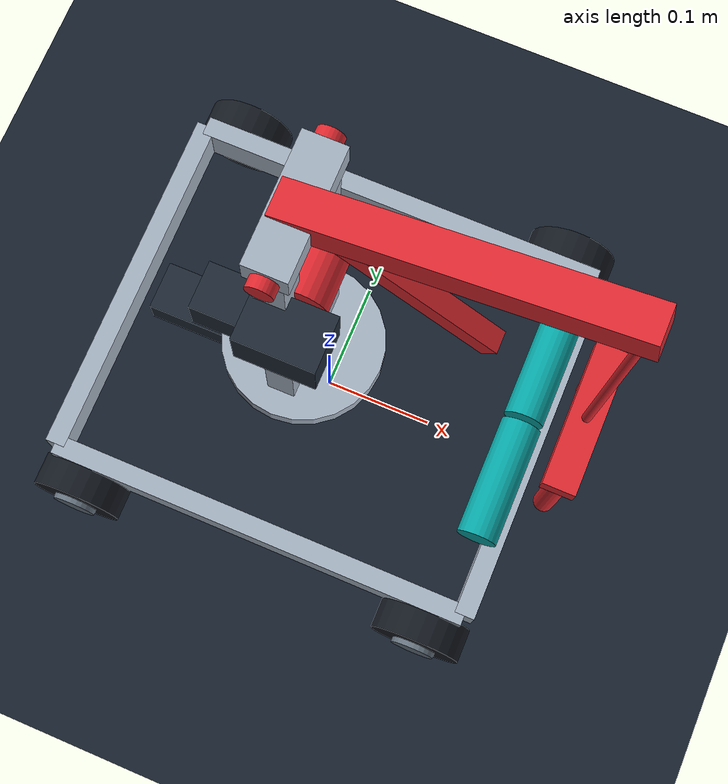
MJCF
<mujoco model="Turntable Crane Collar"><compiler angle="degree" /><visual><global offwidth="800" offheight="600" /><quality offsamples="0" /><headlight ambient=".45 .45 .45" /></visual><worldbody><light pos="0 -1 3" castshadow="false" /><geom type="plane" size="2 2 .1" rgba=".09 .13 .18 1" /><geom type="box" pos="0 -0.165 0.066275" size="0.195 0.009 0.018" euler="0 0 0" rgba=".65 .7 .76 1" contype="0" conaffinity="0" /><geom type="box" pos="0 0.165 0.066275" size="0.195 0.009 0.018" euler="0 0 0" rgba=".65 .7 .76 1" contype="0" conaffinity="0" /><geom type="box" pos="-0.195 0 0.066275" size="0.009 0.165 0.018" euler="0 0 0" rgba=".65 .7 .76 1" contype="0" conaffinity="0" /><geom type="box" pos="0.195 0 0.066275" size="0.009 0.165 0.018" euler="0 0 0" rgba=".65 .7 .76 1" contype="0" conaffinity="0" /><geom type="cylinder" pos="-0.165 -0.186 0.041275" size="0.041275 0.015" euler="90 0 0" rgba=".08 .1 .13 1" contype="0" conaffinity="0" /><geom type="cylinder" pos="-0.165 -0.203 0.041275" size="0.019812 0.003" euler="90 0 0" rgba=".4 .45 .5 1" contype="0" conaffinity="0" /><geom type="cylinder" pos="0.165 -0.186 0.041275" size="0.041275 0.015" euler="90 0 0" rgba=".08 .1 .13 1" contype="0" conaffinity="0" /><geom type="cylinder" pos="0.165 -0.203 0.041275" size="0.019812 0.003" euler="90 0 0" rgba=".4 .45 .5 1" contype="0" conaffinity="0" /><geom type="cylinder" pos="-0.165 0.186 0.041275" size="0.041275 0.015" euler="90 0 0" rgba=".08 .1 .13 1" contype="0" conaffinity="0" /><geom type="cylinder" pos="-0.165 0.203 0.041275" size="0.019812 0.003" euler="90 0 0" rgba=".4 .45 .5 1" contype="0" conaffinity="0" /><geom type="cylinder" pos="0.165 0.186 0.041275" size="0.041275 0.015" euler="90 0 0" rgba=".08 .1 .13 1" contype="0" conaffinity="0" /><geom type="cylinder" pos="0.165 0.203 0.041275" size="0.019812 0.003" euler="90 0 0" rgba=".4 .45 .5 1" contype="0" conaffinity="0" /><geom type="box" pos="-0.095 0.0 0.091275" size="0.07 0.022 0.015" euler="0 0 0" rgba=".12 .16 .21 1" contype="0" conaffinity="0" /><geom type="cylinder" pos="-0.025 0.0 0.108" size="0.0725 0.009" euler="0.0 0.0 0.0" rgba=".65 .7 .76 1" contype="0" conaffinity="0" /><geom type="box" pos="-0.025 -0.038 0.275" size="0.0125 0.0125 0.165" euler="0.0 0.0 0.0" rgba=".65 .7 .76 1" contype="0" conaffinity="0" /><geom type="box" pos="-0.025 0.038 0.275" size="0.0125 0.0125 0.165" euler="0.0 0.0 0.0" rgba=".65 .7 .76 1" contype="0" conaffinity="0" /><geom type="box" pos="-0.025 0.0 0.432" size="0.0175 0.0525 0.0125" euler="0.0 0.0 0.0" rgba=".65 .7 .76 1" contype="0" conaffinity="0" /><geom type="box" pos="0.095 0.0 0.455" size="0.135 0.015 0.015" euler="0.0 -10.0 0.0" rgba=".87 .16 .19 1" contype="0" conaffinity="0" /><geom type="box" pos="0.055 0.0 0.38" size="0.095 0.009 0.009" euler="0.0 38.0 0.0" rgba=".87 .16 .19 1" contype="0" conaffinity="0" /><geom type="cylinder" pos="-0.025 0.0 0.43" size="0.011 0.0625" euler="90.0 0.0 0.0" rgba=".87 .16 .19 1" contype="0" conaffinity="0" /><geom type="box" pos="-0.092 0.0 0.137" size="0.03 0.0225 0.0225" euler="0.0 0.0 0.0" rgba=".12 .16 .21 1" contype="0" conaffinity="0" /><geom type="box" pos="-0.008 -0.062 0.35" size="0.0325 0.0225 0.0225" euler="0.0 0.0 0.0" rgba=".12 .16 .21 1" contype="0" conaffinity="0" /><geom type="cylinder" pos="-0.008 0.0 0.35" size="0.021 0.035" euler="90.0 0.0 0.0" rgba=".87 .16 .19 1" contype="0" conaffinity="0" /><geom type="cylinder" pos="0.22 0.0 0.333" size="0.004 0.115" euler="0.0 0.0 0.0" rgba=".87 .16 .19 1" contype="0" conaffinity="0" /><geom type="box" pos="0.22 0.0 0.218" size="0.014 0.0625 0.009" euler="0.0 0.0 0.0" rgba=".87 .16 .19 1" contype="0" conaffinity="0" /><geom type="capsule" pos="0.22 0.052 0.165" size="0.009 0.0485" euler="0.0 0.0 0.0" rgba=".87 .16 .19 1" contype="0" conaffinity="0" /><geom type="capsule" pos="0.22 -0.052 0.165" size="0.009 0.0485" euler="0.0 0.0 0.0" rgba=".87 .16 .19 1" contype="0" conaffinity="0" /><geom type="cylinder" pos="0.178 0.055 0.135" size="0.0175 0.0525" euler="90.0 0.0 0.0" rgba=".03 .65 .65 1" contype="0" conaffinity="0" /><geom type="cylinder" pos="0.178 -0.055 0.135" size="0.0175 0.0525" euler="90.0 0.0 0.0" rgba=".03 .65 .65 1" contype="0" conaffinity="0" /></worldbody></mujoco>
